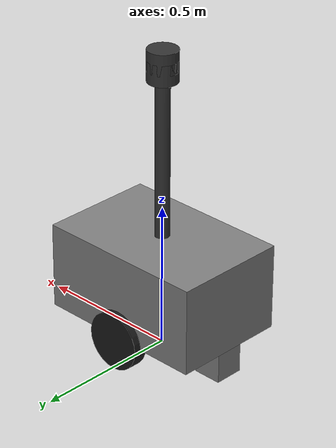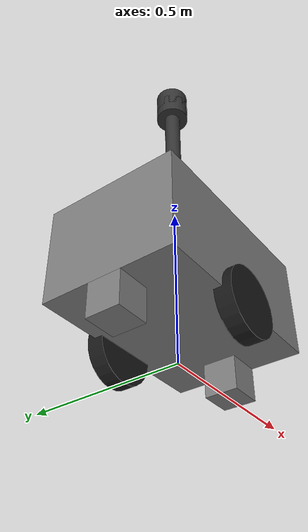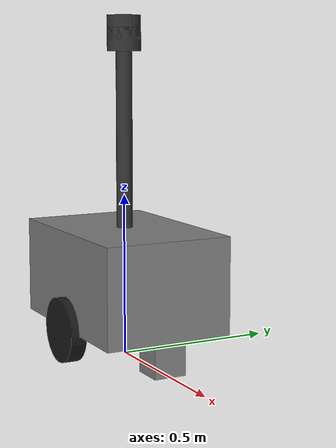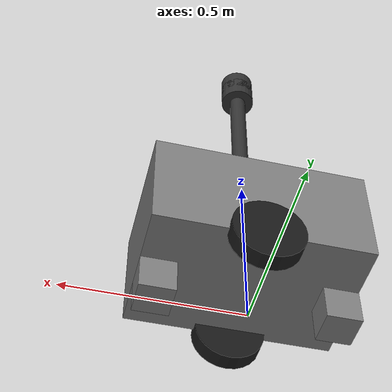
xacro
<?xml version="1.0"?>
<robot name="storm_robot" xmlns:xacro="http://www.ros.org/wiki/xacro">

  <!-- ===== Links ===== -->

  <link name="base_footprint"/>

  <link name="base_link">
    <!-- Chassis offset upward so bottom sits above wheel axle, only wheels touch ground -->
    <visual>
      <origin xyz="0 0 0.15" rpy="0 0 0"/>
      <geometry><box size="0.6 0.4 0.3"/></geometry>
      <material name="grey"><color rgba="0.5 0.5 0.5 1"/></material>
    </visual>
    <collision>
      <origin xyz="0 0 0.15" rpy="0 0 0"/>
      <geometry><box size="0.6 0.4 0.3"/></geometry>
    </collision>
    <inertial>
      <mass value="20.0"/>
      <origin xyz="0 0 0.15"/>
      <inertia ixx="0.5" ixy="0" ixz="0" iyy="0.5" iyz="0" izz="0.5"/>
    </inertial>
  </link>

  <!-- base_link origin is at wheel axle height (0.1m above ground) -->
  <joint name="base_footprint_joint" type="fixed">
    <parent link="base_footprint"/>
    <child link="base_link"/>
    <origin xyz="0 0 0.1" rpy="0 0 0"/>
  </joint>

  <!-- Left wheel -->
  <link name="wheel_left_link">
    <visual>
      <origin xyz="0 0 0" rpy="1.5708 0 0"/>
      <geometry><cylinder radius="0.1" length="0.05"/></geometry>
      <material name="black"><color rgba="0.1 0.1 0.1 1"/></material>
    </visual>
    <collision>
      <origin xyz="0 0 0" rpy="1.5708 0 0"/>
      <geometry><cylinder radius="0.1" length="0.05"/></geometry>
    </collision>
    <inertial>
      <mass value="1.0"/>
      <inertia ixx="0.003" ixy="0" ixz="0" iyy="0.003" iyz="0" izz="0.005"/>
    </inertial>
  </link>

  <joint name="wheel_left_joint" type="continuous">
    <parent link="base_link"/>
    <child link="wheel_left_link"/>
    <origin xyz="0 0.2 0" rpy="0 0 0"/>
    <axis xyz="0 1 0"/>
  </joint>

  <!-- Right wheel -->
  <link name="wheel_right_link">
    <visual>
      <origin xyz="0 0 0" rpy="1.5708 0 0"/>
      <geometry><cylinder radius="0.1" length="0.05"/></geometry>
      <material name="black"/>
    </visual>
    <collision>
      <origin xyz="0 0 0" rpy="1.5708 0 0"/>
      <geometry><cylinder radius="0.1" length="0.05"/></geometry>
    </collision>
    <inertial>
      <mass value="1.0"/>
      <inertia ixx="0.003" ixy="0" ixz="0" iyy="0.003" iyz="0" izz="0.005"/>
    </inertial>
  </link>

  <joint name="wheel_right_joint" type="continuous">
    <parent link="base_link"/>
    <child link="wheel_right_link"/>
    <origin xyz="0 -0.2 0" rpy="0 0 0"/>
    <axis xyz="0 1 0"/>
  </joint>

  <!-- Front caster -->
  <link name="caster_front_link">
    <visual>
      <geometry><box size="0.1 0.1 0.1"/></geometry>
      <material name="grey"/>
    </visual>
    <collision>
      <geometry><box size="0.1 0.1 0.1"/></geometry>
    </collision>
    <inertial>
      <mass value="0.5"/>
      <inertia ixx="0.001" ixy="0" ixz="0" iyy="0.001" iyz="0" izz="0.001"/>
    </inertial>
  </link>

  <joint name="caster_front_joint" type="fixed">
    <parent link="base_link"/>
    <child link="caster_front_link"/>
    <origin xyz="0.25 0 -0.05" rpy="0 0 0"/>
  </joint>

  <!-- Rear caster -->
  <link name="caster_rear_link">
    <visual>
      <geometry><box size="0.1 0.1 0.1"/></geometry>
      <material name="grey"/>
    </visual>
    <collision>
      <geometry><box size="0.1 0.1 0.1"/></geometry>
    </collision>
    <inertial>
      <mass value="0.5"/>
      <inertia ixx="0.001" ixy="0" ixz="0" iyy="0.001" iyz="0" izz="0.001"/>
    </inertial>
  </link>

  <joint name="caster_rear_joint" type="fixed">
    <parent link="base_link"/>
    <child link="caster_rear_link"/>
    <origin xyz="-0.25 0 -0.05" rpy="0 0 0"/>
  </joint>

  <!-- VLP-16: mounting plate -->
  <link name="velodyne_base_link">
    <!-- LiDAR head -->
    <visual>
      <origin xyz="0 0 0" rpy="0 0 0"/>
      <geometry><cylinder radius="0.0516" length="0.0717"/></geometry>
      <material name="dark_grey"><color rgba="0.2 0.2 0.2 1"/></material>
    </visual>
    <!-- Mounting pole: spans from chassis top (0.3m above base_link) up to this link (0.876m above base_link) -->
    <visual>
      <origin xyz="0 0 -0.288" rpy="0 0 0"/>
      <geometry><cylinder radius="0.025" length="0.576"/></geometry>
      <material name="dark_grey"/>
    </visual>
    <collision>
      <origin xyz="0 0 0" rpy="0 0 0"/>
      <geometry><cylinder radius="0.0516" length="0.0717"/></geometry>
    </collision>
    <inertial>
      <mass value="0.1"/>
      <inertia ixx="0.0001" ixy="0" ixz="0" iyy="0.0001" iyz="0" izz="0.0001"/>
    </inertial>
  </link>

  <joint name="velodyne_base_mount_joint" type="fixed">
    <parent link="base_link"/>
    <child link="velodyne_base_link"/>
    <!-- 0.876m matches the real hardware offset used in master_launch.py -->
    <origin xyz="0 0 0.876" rpy="0 0 0"/>
  </joint>

  <!-- VLP-16: sensor frame (origin of published point cloud) -->
  <link name="velodyne">
    <visual>
      <origin xyz="0 0 0" rpy="0 0 0"/>
      <geometry><cylinder radius="0.0516" length="0.0717"/></geometry>
      <material name="dark_grey"/>
    </visual>
    <inertial>
      <mass value="0.83"/>
      <inertia ixx="0.000827" ixy="0" ixz="0" iyy="0.000827" iyz="0" izz="0.000827"/>
    </inertial>
  </link>

  <joint name="velodyne_base_scan_joint" type="fixed">
    <parent link="velodyne_base_link"/>
    <child link="velodyne"/>
    <origin xyz="0 0 0.03585" rpy="0 0 0"/>
  </joint>

  <!-- ===== Gazebo plugins (Ignition Fortress / ign-gazebo6 naming) ===== -->

  <!-- Differential drive: publishes /odom and odom->base_link TF -->
  <gazebo>
    <plugin filename="ignition-gazebo-diff-drive-system"
            name="ignition::gazebo::systems::DiffDrive">
      <left_joint>wheel_left_joint</left_joint>
      <right_joint>wheel_right_joint</right_joint>
      <wheel_separation>0.4</wheel_separation>
      <wheel_radius>0.1</wheel_radius>
      <odom_publish_frequency>20</odom_publish_frequency>
      <topic>/model/storm_robot/cmd_vel</topic>
      <odom_topic>/model/storm_robot/odom</odom_topic>
      <tf_topic>/model/storm_robot/tf</tf_topic>
      <frame_id>odom</frame_id>
      <child_frame_id>base_link</child_frame_id>
      <tf_topic>/tf</tf_topic>
      <min_velocity>-2</min_velocity>
      <max_velocity>2</max_velocity>
      <min_acceleration>-1</min_acceleration>
      <max_acceleration>1</max_acceleration>
    </plugin>
  </gazebo>

  <!-- Joint state publisher: feeds robot_state_publisher -->
  <gazebo>
    <plugin filename="ignition-gazebo-joint-state-publisher-system"
            name="ignition::gazebo::systems::JointStatePublisher">
      <topic>joint_states</topic>
    </plugin>
  </gazebo>

  <!-- Zero friction on casters so they don't resist turning -->
  <gazebo reference="caster_front_link">
    <mu1>0.0</mu1>
    <mu2>0.0</mu2>
  </gazebo>

  <gazebo reference="caster_rear_link">
    <mu1>0.0</mu1>
    <mu2>0.0</mu2>
  </gazebo>

  <!-- VLP16 GPU LiDAR sensor: 16-beam, ±15°, 0.3–25m, 10Hz -->
  <gazebo reference="velodyne">
    <sensor name="vlp16" type="gpu_lidar">
      <topic>/velodyne_points</topic>
      <gz_frame_id>velodyne</gz_frame_id>
      <update_rate>10</update_rate>
      <lidar>
        <scan>
          <horizontal>
            <samples>1800</samples>
            <resolution>1</resolution>
            <min_angle>-3.14159265</min_angle>
            <max_angle>3.14159265</max_angle>
          </horizontal>
          <vertical>
            <samples>16</samples>
            <resolution>1</resolution>
            <min_angle>-0.26179939</min_angle>
            <max_angle>0.26179939</max_angle>
          </vertical>
        </scan>
        <range>
          <min>0.3</min>
          <max>25.0</max>
          <resolution>0.001</resolution>
        </range>
        <noise>
          <type>gaussian</type>
          <mean>0.0</mean>
          <stddev>0.01</stddev>
        </noise>
      </lidar>
      <visualize>false</visualize>
      <always_on>true</always_on>
    </sensor>
  </gazebo>

</robot>
